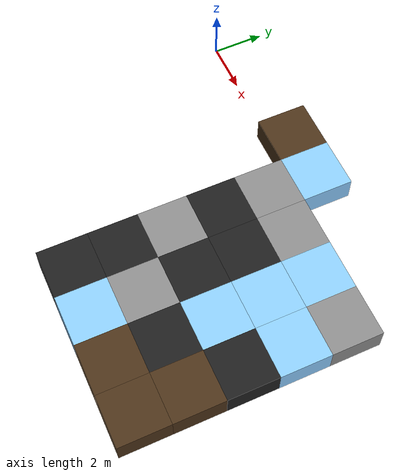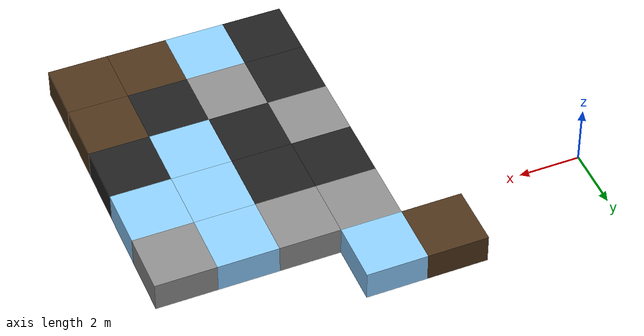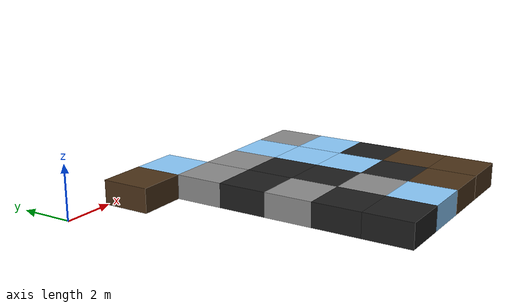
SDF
<sdf version="1.5">
 <world name="squares_example">
  <model name="tile_19_11">
   <static>true</static>
   <pose>7.000 -9.000 -0.500 0 0 0</pose>
   <link name="link">
    <collision name="col">
     <geometry><box><size>2.0 2.0 1.0</size></box></geometry>
     <surface>
      <friction>
       <ode><mu>0.4</mu><mu2>0.15</mu2><fdir1>1 0 0</fdir1><slip1>0.0</slip1><slip2>0.0</slip2></ode>
       <torsional>
        <coefficient>0.03</coefficient>
        <use_patch_radius>false</use_patch_radius>
        <surface_radius>0.12</surface_radius>
        <ode><slip>0.0</slip></ode>
       </torsional>
      </friction>
      <bounce><restitution_coefficient>0.0</restitution_coefficient><threshold>0.1</threshold></bounce>
      <contact>
       <ode><kp>1000000000.0</kp><kd>1000000.0</kd><max_vel>0.01</max_vel><min_depth>0.0</min_depth></ode>
      </contact>
     </surface>
    </collision>
    <visual name="visual">
     <geometry><box><size>2.0 2.0 1.0</size></box></geometry>
     <material>
      <diffuse>0.12 0.12 0.12 1</diffuse>
      <ambient>0 0 0 0</ambient>
      <specular>0 0 0 1</specular>
      <emissive>0 0 0 1</emissive>
     </material>
    </visual>
   </link>
  </model>
  <model name="tile_20_11">
   <static>true</static>
   <pose>9.000 -9.000 -0.500 0 0 0</pose>
   <link name="link">
    <collision name="col">
     <geometry><box><size>2.0 2.0 1.0</size></box></geometry>
     <surface>
      <friction>
       <ode><mu>0.03</mu><mu2>0.02</mu2><fdir1>1 0 0</fdir1><slip1>0.03</slip1><slip2>0.03</slip2></ode>
       <torsional>
        <coefficient>0.005</coefficient>
        <use_patch_radius>false</use_patch_radius>
        <surface_radius>0.12</surface_radius>
        <ode><slip>0.01</slip></ode>
       </torsional>
      </friction>
      <bounce><restitution_coefficient>0.0</restitution_coefficient><threshold>0.1</threshold></bounce>
      <contact>
       <ode><kp>10000000.0</kp><kd>1000.0</kd><max_vel>0.01</max_vel><min_depth>0.0</min_depth></ode>
      </contact>
     </surface>
    </collision>
    <visual name="visual">
     <geometry><box><size>2.0 2.0 1.0</size></box></geometry>
     <material>
      <diffuse>0.55 0.80 1.00 1</diffuse>
      <ambient>0 0 0 0</ambient>
      <specular>0 0 0 1</specular>
      <emissive>0 0 0 1</emissive>
     </material>
    </visual>
   </link>
  </model>
  <model name="tile_21_11">
   <static>true</static>
   <pose>11.000 -9.000 -0.500 0 0 0</pose>
   <link name="link">
    <collision name="col">
     <geometry><box><size>2.0 2.0 1.0</size></box></geometry>
     <surface>
      <friction>
       <ode><mu>0.6</mu><mu2>0.4</mu2><fdir1>1 0 0</fdir1><slip1>0.08</slip1><slip2>0.08</slip2></ode>
       <torsional>
        <coefficient>0.03</coefficient>
        <use_patch_radius>false</use_patch_radius>
        <surface_radius>0.12</surface_radius>
        <ode><slip>0.0</slip></ode>
       </torsional>
      </friction>
      <bounce><restitution_coefficient>0.0</restitution_coefficient><threshold>0.1</threshold></bounce>
      <contact>
       <ode><kp>1000000.0</kp><kd>10000.0</kd><max_vel>0.01</max_vel><min_depth>0.0</min_depth></ode>
      </contact>
     </surface>
    </collision>
    <visual name="visual">
     <geometry><box><size>2.0 2.0 1.0</size></box></geometry>
     <material>
      <diffuse>0.30 0.20 0.10 1</diffuse>
      <ambient>0 0 0 0</ambient>
      <specular>0 0 0 1</specular>
      <emissive>0 0 0 1</emissive>
     </material>
    </visual>
   </link>
  </model>
  <model name="tile_22_11">
   <static>true</static>
   <pose>13.000 -9.000 -0.500 0 0 0</pose>
   <link name="link">
    <collision name="col">
     <geometry><box><size>2.0 2.0 1.0</size></box></geometry>
     <surface>
      <friction>
       <ode><mu>0.6</mu><mu2>0.4</mu2><fdir1>1 0 0</fdir1><slip1>0.08</slip1><slip2>0.08</slip2></ode>
       <torsional>
        <coefficient>0.03</coefficient>
        <use_patch_radius>false</use_patch_radius>
        <surface_radius>0.12</surface_radius>
        <ode><slip>0.0</slip></ode>
       </torsional>
      </friction>
      <bounce><restitution_coefficient>0.0</restitution_coefficient><threshold>0.1</threshold></bounce>
      <contact>
       <ode><kp>1000000.0</kp><kd>10000.0</kd><max_vel>0.01</max_vel><min_depth>0.0</min_depth></ode>
      </contact>
     </surface>
    </collision>
    <visual name="visual">
     <geometry><box><size>2.0 2.0 1.0</size></box></geometry>
     <material>
      <diffuse>0.30 0.20 0.10 1</diffuse>
      <ambient>0 0 0 0</ambient>
      <specular>0 0 0 1</specular>
      <emissive>0 0 0 1</emissive>
     </material>
    </visual>
   </link>
  </model>
  <model name="tile_19_12">
   <static>true</static>
   <pose>7.000 -7.000 -0.500 0 0 0</pose>
   <link name="link">
    <collision name="col">
     <geometry><box><size>2.0 2.0 1.0</size></box></geometry>
     <surface>
      <friction>
       <ode><mu>0.4</mu><mu2>0.15</mu2><fdir1>1 0 0</fdir1><slip1>0.0</slip1><slip2>0.0</slip2></ode>
       <torsional>
        <coefficient>0.03</coefficient>
        <use_patch_radius>false</use_patch_radius>
        <surface_radius>0.12</surface_radius>
        <ode><slip>0.0</slip></ode>
       </torsional>
      </friction>
      <bounce><restitution_coefficient>0.0</restitution_coefficient><threshold>0.1</threshold></bounce>
      <contact>
       <ode><kp>1000000000.0</kp><kd>1000000.0</kd><max_vel>0.01</max_vel><min_depth>0.0</min_depth></ode>
      </contact>
     </surface>
    </collision>
    <visual name="visual">
     <geometry><box><size>2.0 2.0 1.0</size></box></geometry>
     <material>
      <diffuse>0.12 0.12 0.12 1</diffuse>
      <ambient>0 0 0 0</ambient>
      <specular>0 0 0 1</specular>
      <emissive>0 0 0 1</emissive>
     </material>
    </visual>
   </link>
  </model>
  <model name="tile_20_12">
   <static>true</static>
   <pose>9.000 -7.000 -0.500 0 0 0</pose>
   <link name="link">
    <collision name="col">
     <geometry><box><size>2.0 2.0 1.0</size></box></geometry>
     <surface>
      <friction>
       <ode><mu>0.8</mu><mu2>0.3</mu2><fdir1>1 0 0</fdir1><slip1>0.0</slip1><slip2>0.0</slip2></ode>
       <torsional>
        <coefficient>0.03</coefficient>
        <use_patch_radius>false</use_patch_radius>
        <surface_radius>0.12</surface_radius>
        <ode><slip>0.0</slip></ode>
       </torsional>
      </friction>
      <bounce><restitution_coefficient>0.0</restitution_coefficient><threshold>0.1</threshold></bounce>
      <contact>
       <ode><kp>10000000000.0</kp><kd>10000000.0</kd><max_vel>0.01</max_vel><min_depth>0.0</min_depth></ode>
      </contact>
     </surface>
    </collision>
    <visual name="visual">
     <geometry><box><size>2.0 2.0 1.0</size></box></geometry>
     <material>
      <diffuse>0.55 0.55 0.55 1</diffuse>
      <ambient>0 0 0 0</ambient>
      <specular>0 0 0 1</specular>
      <emissive>0 0 0 1</emissive>
     </material>
    </visual>
   </link>
  </model>
  <model name="tile_21_12">
   <static>true</static>
   <pose>11.000 -7.000 -0.500 0 0 0</pose>
   <link name="link">
    <collision name="col">
     <geometry><box><size>2.0 2.0 1.0</size></box></geometry>
     <surface>
      <friction>
       <ode><mu>0.4</mu><mu2>0.15</mu2><fdir1>1 0 0</fdir1><slip1>0.0</slip1><slip2>0.0</slip2></ode>
       <torsional>
        <coefficient>0.03</coefficient>
        <use_patch_radius>false</use_patch_radius>
        <surface_radius>0.12</surface_radius>
        <ode><slip>0.0</slip></ode>
       </torsional>
      </friction>
      <bounce><restitution_coefficient>0.0</restitution_coefficient><threshold>0.1</threshold></bounce>
      <contact>
       <ode><kp>1000000000.0</kp><kd>1000000.0</kd><max_vel>0.01</max_vel><min_depth>0.0</min_depth></ode>
      </contact>
     </surface>
    </collision>
    <visual name="visual">
     <geometry><box><size>2.0 2.0 1.0</size></box></geometry>
     <material>
      <diffuse>0.12 0.12 0.12 1</diffuse>
      <ambient>0 0 0 0</ambient>
      <specular>0 0 0 1</specular>
      <emissive>0 0 0 1</emissive>
     </material>
    </visual>
   </link>
  </model>
  <model name="tile_22_12">
   <static>true</static>
   <pose>13.000 -7.000 -0.500 0 0 0</pose>
   <link name="link">
    <collision name="col">
     <geometry><box><size>2.0 2.0 1.0</size></box></geometry>
     <surface>
      <friction>
       <ode><mu>0.6</mu><mu2>0.4</mu2><fdir1>1 0 0</fdir1><slip1>0.08</slip1><slip2>0.08</slip2></ode>
       <torsional>
        <coefficient>0.03</coefficient>
        <use_patch_radius>false</use_patch_radius>
        <surface_radius>0.12</surface_radius>
        <ode><slip>0.0</slip></ode>
       </torsional>
      </friction>
      <bounce><restitution_coefficient>0.0</restitution_coefficient><threshold>0.1</threshold></bounce>
      <contact>
       <ode><kp>1000000.0</kp><kd>10000.0</kd><max_vel>0.01</max_vel><min_depth>0.0</min_depth></ode>
      </contact>
     </surface>
    </collision>
    <visual name="visual">
     <geometry><box><size>2.0 2.0 1.0</size></box></geometry>
     <material>
      <diffuse>0.30 0.20 0.10 1</diffuse>
      <ambient>0 0 0 0</ambient>
      <specular>0 0 0 1</specular>
      <emissive>0 0 0 1</emissive>
     </material>
    </visual>
   </link>
  </model>
  <model name="tile_19_13">
   <static>true</static>
   <pose>7.000 -5.000 -0.500 0 0 0</pose>
   <link name="link">
    <collision name="col">
     <geometry><box><size>2.0 2.0 1.0</size></box></geometry>
     <surface>
      <friction>
       <ode><mu>0.8</mu><mu2>0.3</mu2><fdir1>1 0 0</fdir1><slip1>0.0</slip1><slip2>0.0</slip2></ode>
       <torsional>
        <coefficient>0.03</coefficient>
        <use_patch_radius>false</use_patch_radius>
        <surface_radius>0.12</surface_radius>
        <ode><slip>0.0</slip></ode>
       </torsional>
      </friction>
      <bounce><restitution_coefficient>0.0</restitution_coefficient><threshold>0.1</threshold></bounce>
      <contact>
       <ode><kp>10000000000.0</kp><kd>10000000.0</kd><max_vel>0.01</max_vel><min_depth>0.0</min_depth></ode>
      </contact>
     </surface>
    </collision>
    <visual name="visual">
     <geometry><box><size>2.0 2.0 1.0</size></box></geometry>
     <material>
      <diffuse>0.55 0.55 0.55 1</diffuse>
      <ambient>0 0 0 0</ambient>
      <specular>0 0 0 1</specular>
      <emissive>0 0 0 1</emissive>
     </material>
    </visual>
   </link>
  </model>
  <model name="tile_20_13">
   <static>true</static>
   <pose>9.000 -5.000 -0.500 0 0 0</pose>
   <link name="link">
    <collision name="col">
     <geometry><box><size>2.0 2.0 1.0</size></box></geometry>
     <surface>
      <friction>
       <ode><mu>0.4</mu><mu2>0.15</mu2><fdir1>1 0 0</fdir1><slip1>0.0</slip1><slip2>0.0</slip2></ode>
       <torsional>
        <coefficient>0.03</coefficient>
        <use_patch_radius>false</use_patch_radius>
        <surface_radius>0.12</surface_radius>
        <ode><slip>0.0</slip></ode>
       </torsional>
      </friction>
      <bounce><restitution_coefficient>0.0</restitution_coefficient><threshold>0.1</threshold></bounce>
      <contact>
       <ode><kp>1000000000.0</kp><kd>1000000.0</kd><max_vel>0.01</max_vel><min_depth>0.0</min_depth></ode>
      </contact>
     </surface>
    </collision>
    <visual name="visual">
     <geometry><box><size>2.0 2.0 1.0</size></box></geometry>
     <material>
      <diffuse>0.12 0.12 0.12 1</diffuse>
      <ambient>0 0 0 0</ambient>
      <specular>0 0 0 1</specular>
      <emissive>0 0 0 1</emissive>
     </material>
    </visual>
   </link>
  </model>
  <model name="tile_21_13">
   <static>true</static>
   <pose>11.000 -5.000 -0.500 0 0 0</pose>
   <link name="link">
    <collision name="col">
     <geometry><box><size>2.0 2.0 1.0</size></box></geometry>
     <surface>
      <friction>
       <ode><mu>0.03</mu><mu2>0.02</mu2><fdir1>1 0 0</fdir1><slip1>0.03</slip1><slip2>0.03</slip2></ode>
       <torsional>
        <coefficient>0.005</coefficient>
        <use_patch_radius>false</use_patch_radius>
        <surface_radius>0.12</surface_radius>
        <ode><slip>0.01</slip></ode>
       </torsional>
      </friction>
      <bounce><restitution_coefficient>0.0</restitution_coefficient><threshold>0.1</threshold></bounce>
      <contact>
       <ode><kp>10000000.0</kp><kd>1000.0</kd><max_vel>0.01</max_vel><min_depth>0.0</min_depth></ode>
      </contact>
     </surface>
    </collision>
    <visual name="visual">
     <geometry><box><size>2.0 2.0 1.0</size></box></geometry>
     <material>
      <diffuse>0.55 0.80 1.00 1</diffuse>
      <ambient>0 0 0 0</ambient>
      <specular>0 0 0 1</specular>
      <emissive>0 0 0 1</emissive>
     </material>
    </visual>
   </link>
  </model>
  <model name="tile_22_13">
   <static>true</static>
   <pose>13.000 -5.000 -0.500 0 0 0</pose>
   <link name="link">
    <collision name="col">
     <geometry><box><size>2.0 2.0 1.0</size></box></geometry>
     <surface>
      <friction>
       <ode><mu>0.4</mu><mu2>0.15</mu2><fdir1>1 0 0</fdir1><slip1>0.0</slip1><slip2>0.0</slip2></ode>
       <torsional>
        <coefficient>0.03</coefficient>
        <use_patch_radius>false</use_patch_radius>
        <surface_radius>0.12</surface_radius>
        <ode><slip>0.0</slip></ode>
       </torsional>
      </friction>
      <bounce><restitution_coefficient>0.0</restitution_coefficient><threshold>0.1</threshold></bounce>
      <contact>
       <ode><kp>1000000000.0</kp><kd>1000000.0</kd><max_vel>0.01</max_vel><min_depth>0.0</min_depth></ode>
      </contact>
     </surface>
    </collision>
    <visual name="visual">
     <geometry><box><size>2.0 2.0 1.0</size></box></geometry>
     <material>
      <diffuse>0.12 0.12 0.12 1</diffuse>
      <ambient>0 0 0 0</ambient>
      <specular>0 0 0 1</specular>
      <emissive>0 0 0 1</emissive>
     </material>
    </visual>
   </link>
  </model>
  <model name="tile_19_14">
   <static>true</static>
   <pose>7.000 -3.000 -0.500 0 0 0</pose>
   <link name="link">
    <collision name="col">
     <geometry><box><size>2.0 2.0 1.0</size></box></geometry>
     <surface>
      <friction>
       <ode><mu>0.4</mu><mu2>0.15</mu2><fdir1>1 0 0</fdir1><slip1>0.0</slip1><slip2>0.0</slip2></ode>
       <torsional>
        <coefficient>0.03</coefficient>
        <use_patch_radius>false</use_patch_radius>
        <surface_radius>0.12</surface_radius>
        <ode><slip>0.0</slip></ode>
       </torsional>
      </friction>
      <bounce><restitution_coefficient>0.0</restitution_coefficient><threshold>0.1</threshold></bounce>
      <contact>
       <ode><kp>1000000000.0</kp><kd>1000000.0</kd><max_vel>0.01</max_vel><min_depth>0.0</min_depth></ode>
      </contact>
     </surface>
    </collision>
    <visual name="visual">
     <geometry><box><size>2.0 2.0 1.0</size></box></geometry>
     <material>
      <diffuse>0.12 0.12 0.12 1</diffuse>
      <ambient>0 0 0 0</ambient>
      <specular>0 0 0 1</specular>
      <emissive>0 0 0 1</emissive>
     </material>
    </visual>
   </link>
  </model>
  <model name="tile_20_14">
   <static>true</static>
   <pose>9.000 -3.000 -0.500 0 0 0</pose>
   <link name="link">
    <collision name="col">
     <geometry><box><size>2.0 2.0 1.0</size></box></geometry>
     <surface>
      <friction>
       <ode><mu>0.4</mu><mu2>0.15</mu2><fdir1>1 0 0</fdir1><slip1>0.0</slip1><slip2>0.0</slip2></ode>
       <torsional>
        <coefficient>0.03</coefficient>
        <use_patch_radius>false</use_patch_radius>
        <surface_radius>0.12</surface_radius>
        <ode><slip>0.0</slip></ode>
       </torsional>
      </friction>
      <bounce><restitution_coefficient>0.0</restitution_coefficient><threshold>0.1</threshold></bounce>
      <contact>
       <ode><kp>1000000000.0</kp><kd>1000000.0</kd><max_vel>0.01</max_vel><min_depth>0.0</min_depth></ode>
      </contact>
     </surface>
    </collision>
    <visual name="visual">
     <geometry><box><size>2.0 2.0 1.0</size></box></geometry>
     <material>
      <diffuse>0.12 0.12 0.12 1</diffuse>
      <ambient>0 0 0 0</ambient>
      <specular>0 0 0 1</specular>
      <emissive>0 0 0 1</emissive>
     </material>
    </visual>
   </link>
  </model>
  <model name="tile_21_14">
   <static>true</static>
   <pose>11.000 -3.000 -0.500 0 0 0</pose>
   <link name="link">
    <collision name="col">
     <geometry><box><size>2.0 2.0 1.0</size></box></geometry>
     <surface>
      <friction>
       <ode><mu>0.03</mu><mu2>0.02</mu2><fdir1>1 0 0</fdir1><slip1>0.03</slip1><slip2>0.03</slip2></ode>
       <torsional>
        <coefficient>0.005</coefficient>
        <use_patch_radius>false</use_patch_radius>
        <surface_radius>0.12</surface_radius>
        <ode><slip>0.01</slip></ode>
       </torsional>
      </friction>
      <bounce><restitution_coefficient>0.0</restitution_coefficient><threshold>0.1</threshold></bounce>
      <contact>
       <ode><kp>10000000.0</kp><kd>1000.0</kd><max_vel>0.01</max_vel><min_depth>0.0</min_depth></ode>
      </contact>
     </surface>
    </collision>
    <visual name="visual">
     <geometry><box><size>2.0 2.0 1.0</size></box></geometry>
     <material>
      <diffuse>0.55 0.80 1.00 1</diffuse>
      <ambient>0 0 0 0</ambient>
      <specular>0 0 0 1</specular>
      <emissive>0 0 0 1</emissive>
     </material>
    </visual>
   </link>
  </model>
  <model name="tile_22_14">
   <static>true</static>
   <pose>13.000 -3.000 -0.500 0 0 0</pose>
   <link name="link">
    <collision name="col">
     <geometry><box><size>2.0 2.0 1.0</size></box></geometry>
     <surface>
      <friction>
       <ode><mu>0.03</mu><mu2>0.02</mu2><fdir1>1 0 0</fdir1><slip1>0.03</slip1><slip2>0.03</slip2></ode>
       <torsional>
        <coefficient>0.005</coefficient>
        <use_patch_radius>false</use_patch_radius>
        <surface_radius>0.12</surface_radius>
        <ode><slip>0.01</slip></ode>
       </torsional>
      </friction>
      <bounce><restitution_coefficient>0.0</restitution_coefficient><threshold>0.1</threshold></bounce>
      <contact>
       <ode><kp>10000000.0</kp><kd>1000.0</kd><max_vel>0.01</max_vel><min_depth>0.0</min_depth></ode>
      </contact>
     </surface>
    </collision>
    <visual name="visual">
     <geometry><box><size>2.0 2.0 1.0</size></box></geometry>
     <material>
      <diffuse>0.55 0.80 1.00 1</diffuse>
      <ambient>0 0 0 0</ambient>
      <specular>0 0 0 1</specular>
      <emissive>0 0 0 1</emissive>
     </material>
    </visual>
   </link>
  </model>
  <model name="tile_19_15">
   <static>true</static>
   <pose>7.000 -1.000 -0.500 0 0 0</pose>
   <link name="link">
    <collision name="col">
     <geometry><box><size>2.0 2.0 1.0</size></box></geometry>
     <surface>
      <friction>
       <ode><mu>0.8</mu><mu2>0.3</mu2><fdir1>1 0 0</fdir1><slip1>0.0</slip1><slip2>0.0</slip2></ode>
       <torsional>
        <coefficient>0.03</coefficient>
        <use_patch_radius>false</use_patch_radius>
        <surface_radius>0.12</surface_radius>
        <ode><slip>0.0</slip></ode>
       </torsional>
      </friction>
      <bounce><restitution_coefficient>0.0</restitution_coefficient><threshold>0.1</threshold></bounce>
      <contact>
       <ode><kp>10000000000.0</kp><kd>10000000.0</kd><max_vel>0.01</max_vel><min_depth>0.0</min_depth></ode>
      </contact>
     </surface>
    </collision>
    <visual name="visual">
     <geometry><box><size>2.0 2.0 1.0</size></box></geometry>
     <material>
      <diffuse>0.55 0.55 0.55 1</diffuse>
      <ambient>0 0 0 0</ambient>
      <specular>0 0 0 1</specular>
      <emissive>0 0 0 1</emissive>
     </material>
    </visual>
   </link>
  </model>
  <model name="tile_20_15">
   <static>true</static>
   <pose>9.000 -1.000 -0.500 0 0 0</pose>
   <link name="link">
    <collision name="col">
     <geometry><box><size>2.0 2.0 1.0</size></box></geometry>
     <surface>
      <friction>
       <ode><mu>0.8</mu><mu2>0.3</mu2><fdir1>1 0 0</fdir1><slip1>0.0</slip1><slip2>0.0</slip2></ode>
       <torsional>
        <coefficient>0.03</coefficient>
        <use_patch_radius>false</use_patch_radius>
        <surface_radius>0.12</surface_radius>
        <ode><slip>0.0</slip></ode>
       </torsional>
      </friction>
      <bounce><restitution_coefficient>0.0</restitution_coefficient><threshold>0.1</threshold></bounce>
      <contact>
       <ode><kp>10000000000.0</kp><kd>10000000.0</kd><max_vel>0.01</max_vel><min_depth>0.0</min_depth></ode>
      </contact>
     </surface>
    </collision>
    <visual name="visual">
     <geometry><box><size>2.0 2.0 1.0</size></box></geometry>
     <material>
      <diffuse>0.55 0.55 0.55 1</diffuse>
      <ambient>0 0 0 0</ambient>
      <specular>0 0 0 1</specular>
      <emissive>0 0 0 1</emissive>
     </material>
    </visual>
   </link>
  </model>
  <model name="tile_21_15">
   <static>true</static>
   <pose>11.000 -1.000 -0.500 0 0 0</pose>
   <link name="link">
    <collision name="col">
     <geometry><box><size>2.0 2.0 1.0</size></box></geometry>
     <surface>
      <friction>
       <ode><mu>0.03</mu><mu2>0.02</mu2><fdir1>1 0 0</fdir1><slip1>0.03</slip1><slip2>0.03</slip2></ode>
       <torsional>
        <coefficient>0.005</coefficient>
        <use_patch_radius>false</use_patch_radius>
        <surface_radius>0.12</surface_radius>
        <ode><slip>0.01</slip></ode>
       </torsional>
      </friction>
      <bounce><restitution_coefficient>0.0</restitution_coefficient><threshold>0.1</threshold></bounce>
      <contact>
       <ode><kp>10000000.0</kp><kd>1000.0</kd><max_vel>0.01</max_vel><min_depth>0.0</min_depth></ode>
      </contact>
     </surface>
    </collision>
    <visual name="visual">
     <geometry><box><size>2.0 2.0 1.0</size></box></geometry>
     <material>
      <diffuse>0.55 0.80 1.00 1</diffuse>
      <ambient>0 0 0 0</ambient>
      <specular>0 0 0 1</specular>
      <emissive>0 0 0 1</emissive>
     </material>
    </visual>
   </link>
  </model>
  <model name="tile_22_15">
   <static>true</static>
   <pose>13.000 -1.000 -0.500 0 0 0</pose>
   <link name="link">
    <collision name="col">
     <geometry><box><size>2.0 2.0 1.0</size></box></geometry>
     <surface>
      <friction>
       <ode><mu>0.8</mu><mu2>0.3</mu2><fdir1>1 0 0</fdir1><slip1>0.0</slip1><slip2>0.0</slip2></ode>
       <torsional>
        <coefficient>0.03</coefficient>
        <use_patch_radius>false</use_patch_radius>
        <surface_radius>0.12</surface_radius>
        <ode><slip>0.0</slip></ode>
       </torsional>
      </friction>
      <bounce><restitution_coefficient>0.0</restitution_coefficient><threshold>0.1</threshold></bounce>
      <contact>
       <ode><kp>10000000000.0</kp><kd>10000000.0</kd><max_vel>0.01</max_vel><min_depth>0.0</min_depth></ode>
      </contact>
     </surface>
    </collision>
    <visual name="visual">
     <geometry><box><size>2.0 2.0 1.0</size></box></geometry>
     <material>
      <diffuse>0.55 0.55 0.55 1</diffuse>
      <ambient>0 0 0 0</ambient>
      <specular>0 0 0 1</specular>
      <emissive>0 0 0 1</emissive>
     </material>
    </visual>
   </link>
  </model>
  <model name="tile_18_16">
   <static>true</static>
   <pose>5.000 1.000 -0.500 0 0 0</pose>
   <link name="link">
    <collision name="col">
     <geometry><box><size>2.0 2.0 1.0</size></box></geometry>
     <surface>
      <friction>
       <ode><mu>0.6</mu><mu2>0.4</mu2><fdir1>1 0 0</fdir1><slip1>0.08</slip1><slip2>0.08</slip2></ode>
       <torsional>
        <coefficient>0.03</coefficient>
        <use_patch_radius>false</use_patch_radius>
        <surface_radius>0.12</surface_radius>
        <ode><slip>0.0</slip></ode>
       </torsional>
      </friction>
      <bounce><restitution_coefficient>0.0</restitution_coefficient><threshold>0.1</threshold></bounce>
      <contact>
       <ode><kp>1000000.0</kp><kd>10000.0</kd><max_vel>0.01</max_vel><min_depth>0.0</min_depth></ode>
      </contact>
     </surface>
    </collision>
    <visual name="visual">
     <geometry><box><size>2.0 2.0 1.0</size></box></geometry>
     <material>
      <diffuse>0.30 0.20 0.10 1</diffuse>
      <ambient>0 0 0 0</ambient>
      <specular>0 0 0 1</specular>
      <emissive>0 0 0 1</emissive>
     </material>
    </visual>
   </link>
  </model>
  <model name="tile_19_16">
   <static>true</static>
   <pose>7.000 1.000 -0.500 0 0 0</pose>
   <link name="link">
    <collision name="col">
     <geometry><box><size>2.0 2.0 1.0</size></box></geometry>
     <surface>
      <friction>
       <ode><mu>0.03</mu><mu2>0.02</mu2><fdir1>1 0 0</fdir1><slip1>0.03</slip1><slip2>0.03</slip2></ode>
       <torsional>
        <coefficient>0.005</coefficient>
        <use_patch_radius>false</use_patch_radius>
        <surface_radius>0.12</surface_radius>
        <ode><slip>0.01</slip></ode>
       </torsional>
      </friction>
      <bounce><restitution_coefficient>0.0</restitution_coefficient><threshold>0.1</threshold></bounce>
      <contact>
       <ode><kp>10000000.0</kp><kd>1000.0</kd><max_vel>0.01</max_vel><min_depth>0.0</min_depth></ode>
      </contact>
     </surface>
    </collision>
    <visual name="visual">
     <geometry><box><size>2.0 2.0 1.0</size></box></geometry>
     <material>
      <diffuse>0.55 0.80 1.00 1</diffuse>
      <ambient>0 0 0 0</ambient>
      <specular>0 0 0 1</specular>
      <emissive>0 0 0 1</emissive>
     </material>
    </visual>
   </link>
  </model>
 </world>
</sdf>
